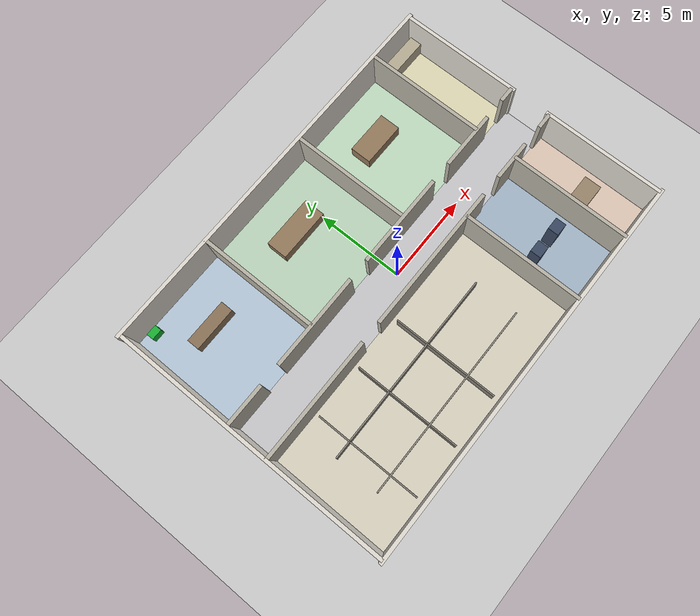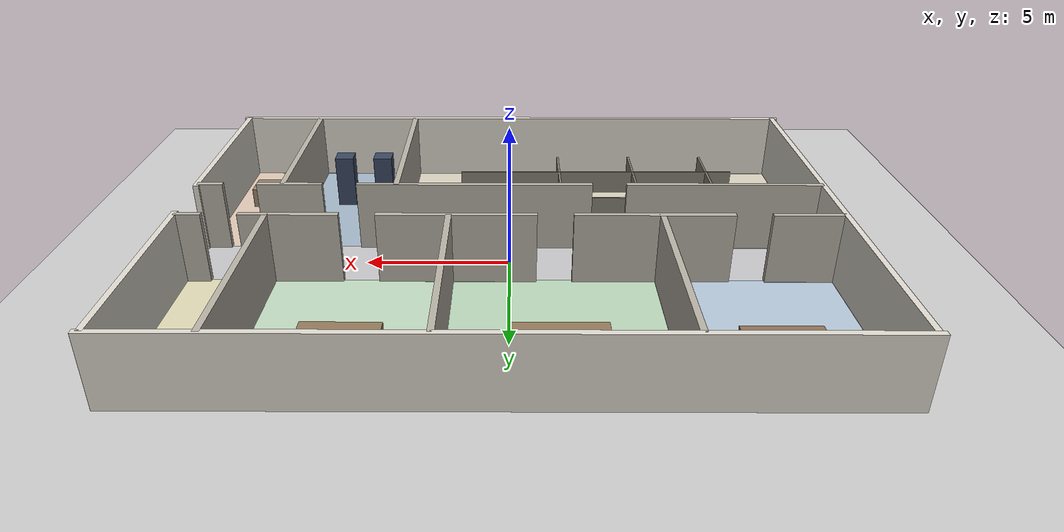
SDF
<?xml version="1.0" ?>
<sdf version='1.8'>
  <world name='office'>

    <physics name='1ms' type='ignored'>
      <max_step_size>0.001</max_step_size>
      <real_time_factor>1</real_time_factor>
    </physics>

    <plugin filename="ignition-gazebo-physics-system"
            name="ignition::gazebo::systems::Physics"/>
    <plugin filename="ignition-gazebo-user-commands-system"
            name="ignition::gazebo::systems::UserCommands"/>
    <plugin filename="ignition-gazebo-scene-broadcaster-system"
            name="ignition::gazebo::systems::SceneBroadcaster"/>
    <plugin filename="ignition-gazebo-sensors-system"
            name="ignition::gazebo::systems::Sensors">
      <render_engine>ogre2</render_engine>
    </plugin>
    <plugin filename="ignition-gazebo-contact-system"
            name="ignition::gazebo::systems::Contact"/>

    <light name='sun' type='directional'>
      <pose>0 0 20 0 0 0</pose>
      <cast_shadows>true</cast_shadows>
      <intensity>1</intensity>
      <direction>-0.1 0.1 -0.95</direction>
      <diffuse>1.0 0.98 0.96 1</diffuse>
      <specular>0.3 0.3 0.3 1</specular>
    </light>
    <light name='light_w' type='point'>
      <pose>-6 0 3 0 0 0</pose>
      <diffuse>0.9 0.9 1.0 1</diffuse>
      <specular>0.1 0.1 0.1 1</specular>
      <attenuation><range>20</range><linear>0.04</linear></attenuation>
    </light>
    <light name='light_e' type='point'>
      <pose>6 0 3 0 0 0</pose>
      <diffuse>0.9 0.9 1.0 1</diffuse>
      <specular>0.1 0.1 0.1 1</specular>
      <attenuation><range>20</range><linear>0.04</linear></attenuation>
    </light>

    <!-- Ground plane -->
    <model name='ground_plane'>
      <static>true</static>
      <link name='link'>
        <collision name='c'>
          <geometry><plane><normal>0 0 1</normal><size>100 100</size></plane></geometry>
        </collision>
        <visual name='v'>
          <geometry><plane><normal>0 0 1</normal><size>100 100</size></plane></geometry>
          <material><ambient>0.80 0.80 0.80 1</ambient><diffuse>0.80 0.80 0.80 1</diffuse></material>
        </visual>
      </link>
    </model>

    <!-- ── Floor zone pads (h=0.005 m) ───────────────────────────────────── -->
    <model name='zone_corridor'><static>true</static><pose>0 0 0.003 0 0 0</pose><link name='link'><collision name='c'><geometry><box><size>22 2.4 0.005</size></box></geometry></collision><visual name='v'><geometry><box><size>22 2.4 0.005</size></box></geometry><material><ambient>0.82 0.82 0.84 0.8</ambient><diffuse>0.82 0.82 0.84 0.8</diffuse></material></visual></link></model>
    <model name='zone_lobby'><static>true</static><pose>-8 4.6 0.003 0 0 0</pose><link name='link'><collision name='c'><geometry><box><size>6 6.8 0.005</size></box></geometry></collision><visual name='v'><geometry><box><size>6 6.8 0.005</size></box></geometry><material><ambient>0.72 0.82 0.92 0.7</ambient><diffuse>0.72 0.82 0.92 0.7</diffuse></material></visual></link></model>
    <model name='zone_mtg_a'><static>true</static><pose>-1.5 4.6 0.003 0 0 0</pose><link name='link'><collision name='c'><geometry><box><size>7 6.8 0.005</size></box></geometry></collision><visual name='v'><geometry><box><size>7 6.8 0.005</size></box></geometry><material><ambient>0.75 0.90 0.75 0.7</ambient><diffuse>0.75 0.90 0.75 0.7</diffuse></material></visual></link></model>
    <model name='zone_mtg_b'><static>true</static><pose>5 4.6 0.003 0 0 0</pose><link name='link'><collision name='c'><geometry><box><size>6 6.8 0.005</size></box></geometry></collision><visual name='v'><geometry><box><size>6 6.8 0.005</size></box></geometry><material><ambient>0.78 0.93 0.78 0.7</ambient><diffuse>0.78 0.93 0.78 0.7</diffuse></material></visual></link></model>
    <model name='zone_kitchen'><static>true</static><pose>9.5 4.6 0.003 0 0 0</pose><link name='link'><collision name='c'><geometry><box><size>3 6.8 0.005</size></box></geometry></collision><visual name='v'><geometry><box><size>3 6.8 0.005</size></box></geometry><material><ambient>0.96 0.92 0.72 0.7</ambient><diffuse>0.96 0.92 0.72 0.7</diffuse></material></visual></link></model>
    <model name='zone_workspace'><static>true</static><pose>-3.5 -4.6 0.003 0 0 0</pose><link name='link'><collision name='c'><geometry><box><size>15 6.8 0.005</size></box></geometry></collision><visual name='v'><geometry><box><size>15 6.8 0.005</size></box></geometry><material><ambient>0.92 0.88 0.78 0.7</ambient><diffuse>0.92 0.88 0.78 0.7</diffuse></material></visual></link></model>
    <model name='zone_server'><static>true</static><pose>6 -4.6 0.003 0 0 0</pose><link name='link'><collision name='c'><geometry><box><size>4 6.8 0.005</size></box></geometry></collision><visual name='v'><geometry><box><size>4 6.8 0.005</size></box></geometry><material><ambient>0.62 0.72 0.82 0.7</ambient><diffuse>0.62 0.72 0.82 0.7</diffuse></material></visual></link></model>
    <model name='zone_break'><static>true</static><pose>9.5 -4.6 0.003 0 0 0</pose><link name='link'><collision name='c'><geometry><box><size>3 6.8 0.005</size></box></geometry></collision><visual name='v'><geometry><box><size>3 6.8 0.005</size></box></geometry><material><ambient>0.95 0.82 0.72 0.7</ambient><diffuse>0.95 0.82 0.72 0.7</diffuse></material></visual></link></model>

    <!-- ── Outer walls (22 m × 16 m, 2.5 m tall) ────────────────────────── -->
    <model name='wall_north'><static>true</static><pose>0 8 1.25 0 0 0</pose><link name='link'><collision name='c'><geometry><box><size>22.4 0.2 2.5</size></box></geometry></collision><visual name='v'><geometry><box><size>22.4 0.2 2.5</size></box></geometry><material><ambient>0.88 0.86 0.82 1</ambient><diffuse>0.88 0.86 0.82 1</diffuse></material></visual></link></model>
    <model name='wall_south'><static>true</static><pose>0 -8 1.25 0 0 0</pose><link name='link'><collision name='c'><geometry><box><size>22.4 0.2 2.5</size></box></geometry></collision><visual name='v'><geometry><box><size>22.4 0.2 2.5</size></box></geometry><material><ambient>0.88 0.86 0.82 1</ambient><diffuse>0.88 0.86 0.82 1</diffuse></material></visual></link></model>
    <model name='wall_west'><static>true</static><pose>-11 0 1.25 0 0 0</pose><link name='link'><collision name='c'><geometry><box><size>0.2 16 2.5</size></box></geometry></collision><visual name='v'><geometry><box><size>0.2 16 2.5</size></box></geometry><material><ambient>0.88 0.86 0.82 1</ambient><diffuse>0.88 0.86 0.82 1</diffuse></material></visual></link></model>
    <!-- East wall: 2 m entry gap at y = -1 to +1 -->
    <model name='wall_east_n'><static>true</static><pose>11 4.5 1.25 0 0 0</pose><link name='link'><collision name='c'><geometry><box><size>0.2 7 2.5</size></box></geometry></collision><visual name='v'><geometry><box><size>0.2 7 2.5</size></box></geometry><material><ambient>0.88 0.86 0.82 1</ambient><diffuse>0.88 0.86 0.82 1</diffuse></material></visual></link></model>
    <model name='wall_east_s'><static>true</static><pose>11 -4.5 1.25 0 0 0</pose><link name='link'><collision name='c'><geometry><box><size>0.2 7 2.5</size></box></geometry></collision><visual name='v'><geometry><box><size>0.2 7 2.5</size></box></geometry><material><ambient>0.88 0.86 0.82 1</ambient><diffuse>0.88 0.86 0.82 1</diffuse></material></visual></link></model>

    <!-- ── North corridor wall (y=1.2) — 4 door openings 1.2 m wide ──────── -->
    <!-- Lobby door at x=-8, MtgA at x=-1.5, MtgB at x=+5, Kitchen at x=+9.5 -->
    <model name='ncw_1'><static>true</static><pose>-9.8 1.2 1.25 0 0 0</pose><link name='link'><collision name='c'><geometry><box><size>2.4 0.2 2.5</size></box></geometry></collision><visual name='v'><geometry><box><size>2.4 0.2 2.5</size></box></geometry><material><ambient>0.72 0.70 0.65 1</ambient><diffuse>0.72 0.70 0.65 1</diffuse></material></visual></link></model>
    <model name='ncw_2'><static>true</static><pose>-4.75 1.2 1.25 0 0 0</pose><link name='link'><collision name='c'><geometry><box><size>5.3 0.2 2.5</size></box></geometry></collision><visual name='v'><geometry><box><size>5.3 0.2 2.5</size></box></geometry><material><ambient>0.72 0.70 0.65 1</ambient><diffuse>0.72 0.70 0.65 1</diffuse></material></visual></link></model>
    <model name='ncw_3'><static>true</static><pose>1.75 1.2 1.25 0 0 0</pose><link name='link'><collision name='c'><geometry><box><size>5.3 0.2 2.5</size></box></geometry></collision><visual name='v'><geometry><box><size>5.3 0.2 2.5</size></box></geometry><material><ambient>0.72 0.70 0.65 1</ambient><diffuse>0.72 0.70 0.65 1</diffuse></material></visual></link></model>
    <model name='ncw_4'><static>true</static><pose>7.25 1.2 1.25 0 0 0</pose><link name='link'><collision name='c'><geometry><box><size>3.3 0.2 2.5</size></box></geometry></collision><visual name='v'><geometry><box><size>3.3 0.2 2.5</size></box></geometry><material><ambient>0.72 0.70 0.65 1</ambient><diffuse>0.72 0.70 0.65 1</diffuse></material></visual></link></model>
    <model name='ncw_5'><static>true</static><pose>10.55 1.2 1.25 0 0 0</pose><link name='link'><collision name='c'><geometry><box><size>0.9 0.2 2.5</size></box></geometry></collision><visual name='v'><geometry><box><size>0.9 0.2 2.5</size></box></geometry><material><ambient>0.72 0.70 0.65 1</ambient><diffuse>0.72 0.70 0.65 1</diffuse></material></visual></link></model>

    <!-- ── South corridor wall (y=-1.2) — 3 door openings 1.2 m wide ─────── -->
    <!-- OpenWS door at x=-3.5, Server at x=+6, Break at x=+9.5 -->
    <model name='scw_1'><static>true</static><pose>-7.55 -1.2 1.25 0 0 0</pose><link name='link'><collision name='c'><geometry><box><size>6.9 0.2 2.5</size></box></geometry></collision><visual name='v'><geometry><box><size>6.9 0.2 2.5</size></box></geometry><material><ambient>0.72 0.70 0.65 1</ambient><diffuse>0.72 0.70 0.65 1</diffuse></material></visual></link></model>
    <model name='scw_2'><static>true</static><pose>1.25 -1.2 1.25 0 0 0</pose><link name='link'><collision name='c'><geometry><box><size>8.3 0.2 2.5</size></box></geometry></collision><visual name='v'><geometry><box><size>8.3 0.2 2.5</size></box></geometry><material><ambient>0.72 0.70 0.65 1</ambient><diffuse>0.72 0.70 0.65 1</diffuse></material></visual></link></model>
    <model name='scw_3'><static>true</static><pose>7.75 -1.2 1.25 0 0 0</pose><link name='link'><collision name='c'><geometry><box><size>2.3 0.2 2.5</size></box></geometry></collision><visual name='v'><geometry><box><size>2.3 0.2 2.5</size></box></geometry><material><ambient>0.72 0.70 0.65 1</ambient><diffuse>0.72 0.70 0.65 1</diffuse></material></visual></link></model>
    <model name='scw_4'><static>true</static><pose>10.55 -1.2 1.25 0 0 0</pose><link name='link'><collision name='c'><geometry><box><size>0.9 0.2 2.5</size></box></geometry></collision><visual name='v'><geometry><box><size>0.9 0.2 2.5</size></box></geometry><material><ambient>0.72 0.70 0.65 1</ambient><diffuse>0.72 0.70 0.65 1</diffuse></material></visual></link></model>

    <!-- ── North wing room dividers (y = 1.2 to 8) ───────────────────────── -->
    <model name='ndiv_lobby_mtga'><static>true</static><pose>-5 4.6 1.25 0 0 0</pose><link name='link'><collision name='c'><geometry><box><size>0.2 6.8 2.5</size></box></geometry></collision><visual name='v'><geometry><box><size>0.2 6.8 2.5</size></box></geometry><material><ambient>0.72 0.70 0.65 1</ambient><diffuse>0.72 0.70 0.65 1</diffuse></material></visual></link></model>
    <model name='ndiv_mtga_mtgb'><static>true</static><pose>2 4.6 1.25 0 0 0</pose><link name='link'><collision name='c'><geometry><box><size>0.2 6.8 2.5</size></box></geometry></collision><visual name='v'><geometry><box><size>0.2 6.8 2.5</size></box></geometry><material><ambient>0.72 0.70 0.65 1</ambient><diffuse>0.72 0.70 0.65 1</diffuse></material></visual></link></model>
    <model name='ndiv_mtgb_kit'><static>true</static><pose>8 4.6 1.25 0 0 0</pose><link name='link'><collision name='c'><geometry><box><size>0.2 6.8 2.5</size></box></geometry></collision><visual name='v'><geometry><box><size>0.2 6.8 2.5</size></box></geometry><material><ambient>0.72 0.70 0.65 1</ambient><diffuse>0.72 0.70 0.65 1</diffuse></material></visual></link></model>

    <!-- ── South wing room dividers (y = -8 to -1.2) ────────────────────── -->
    <model name='sdiv_ws_srv'><static>true</static><pose>4 -4.6 1.25 0 0 0</pose><link name='link'><collision name='c'><geometry><box><size>0.2 6.8 2.5</size></box></geometry></collision><visual name='v'><geometry><box><size>0.2 6.8 2.5</size></box></geometry><material><ambient>0.72 0.70 0.65 1</ambient><diffuse>0.72 0.70 0.65 1</diffuse></material></visual></link></model>
    <model name='sdiv_srv_brk'><static>true</static><pose>8 -4.6 1.25 0 0 0</pose><link name='link'><collision name='c'><geometry><box><size>0.2 6.8 2.5</size></box></geometry></collision><visual name='v'><geometry><box><size>0.2 6.8 2.5</size></box></geometry><material><ambient>0.72 0.70 0.65 1</ambient><diffuse>0.72 0.70 0.65 1</diffuse></material></visual></link></model>

    <!-- ── Cubicle dividers in open workspace (0.9 m tall) ───────────────── -->
    <!-- Horizontal rows (E-W): x = -9 to +2, centered at x = -3.5 -->
    <model name='cub_row1'><static>true</static><pose>-3.5 -6.0 0.45 0 0 0</pose><link name='link'><collision name='c'><geometry><box><size>11 0.08 0.9</size></box></geometry></collision><visual name='v'><geometry><box><size>11 0.08 0.9</size></box></geometry><material><ambient>0.52 0.50 0.46 1</ambient><diffuse>0.52 0.50 0.46 1</diffuse></material></visual></link></model>
    <model name='cub_row2'><static>true</static><pose>-3.5 -3.5 0.45 0 0 0</pose><link name='link'><collision name='c'><geometry><box><size>11 0.08 0.9</size></box></geometry></collision><visual name='v'><geometry><box><size>11 0.08 0.9</size></box></geometry><material><ambient>0.52 0.50 0.46 1</ambient><diffuse>0.52 0.50 0.46 1</diffuse></material></visual></link></model>
    <!-- Vertical columns (N-S): y = -7.6 to -1.6, centered at y = -4.6 -->
    <model name='cub_col1'><static>true</static><pose>-8 -4.6 0.45 0 0 0</pose><link name='link'><collision name='c'><geometry><box><size>0.08 6.0 0.9</size></box></geometry></collision><visual name='v'><geometry><box><size>0.08 6.0 0.9</size></box></geometry><material><ambient>0.52 0.50 0.46 1</ambient><diffuse>0.52 0.50 0.46 1</diffuse></material></visual></link></model>
    <model name='cub_col2'><static>true</static><pose>-5 -4.6 0.45 0 0 0</pose><link name='link'><collision name='c'><geometry><box><size>0.08 6.0 0.9</size></box></geometry></collision><visual name='v'><geometry><box><size>0.08 6.0 0.9</size></box></geometry><material><ambient>0.52 0.50 0.46 1</ambient><diffuse>0.52 0.50 0.46 1</diffuse></material></visual></link></model>
    <model name='cub_col3'><static>true</static><pose>-2 -4.6 0.45 0 0 0</pose><link name='link'><collision name='c'><geometry><box><size>0.08 6.0 0.9</size></box></geometry></collision><visual name='v'><geometry><box><size>0.08 6.0 0.9</size></box></geometry><material><ambient>0.52 0.50 0.46 1</ambient><diffuse>0.52 0.50 0.46 1</diffuse></material></visual></link></model>

    <!-- ── Furniture ─────────────────────────────────────────────────────── -->
    <!-- Reception desk -->
    <model name='reception_desk'><static>true</static><pose>-8 5.5 0.4 0 0 0</pose><link name='link'><collision name='c'><geometry><box><size>2.5 0.7 0.8</size></box></geometry></collision><visual name='v'><geometry><box><size>2.5 0.7 0.8</size></box></geometry><material><ambient>0.55 0.45 0.35 1</ambient><diffuse>0.55 0.45 0.35 1</diffuse></material></visual></link></model>
    <!-- Meeting table A -->
    <model name='table_mtg_a'><static>true</static><pose>-1.5 5.5 0.375 0 0 0</pose><link name='link'><collision name='c'><geometry><box><size>3.0 1.2 0.75</size></box></geometry></collision><visual name='v'><geometry><box><size>3.0 1.2 0.75</size></box></geometry><material><ambient>0.58 0.48 0.36 1</ambient><diffuse>0.58 0.48 0.36 1</diffuse></material></visual></link></model>
    <!-- Meeting table B -->
    <model name='table_mtg_b'><static>true</static><pose>5 5.5 0.375 0 0 0</pose><link name='link'><collision name='c'><geometry><box><size>2.5 1.2 0.75</size></box></geometry></collision><visual name='v'><geometry><box><size>2.5 1.2 0.75</size></box></geometry><material><ambient>0.58 0.48 0.36 1</ambient><diffuse>0.58 0.48 0.36 1</diffuse></material></visual></link></model>
    <!-- Kitchen counter along north wall -->
    <model name='kitchen_counter'><static>true</static><pose>9.5 7.4 0.45 0 0 0</pose><link name='link'><collision name='c'><geometry><box><size>2.8 0.7 0.9</size></box></geometry></collision><visual name='v'><geometry><box><size>2.8 0.7 0.9</size></box></geometry><material><ambient>0.72 0.68 0.58 1</ambient><diffuse>0.72 0.68 0.58 1</diffuse></material></visual></link></model>
    <!-- Server racks (2 units) -->
    <model name='server_rack_a'><static>true</static><pose>5.0 -5 1.0 0 0 0</pose><link name='link'><collision name='c'><geometry><box><size>0.7 0.6 2.0</size></box></geometry></collision><visual name='v'><geometry><box><size>0.7 0.6 2.0</size></box></geometry><material><ambient>0.22 0.28 0.38 1</ambient><diffuse>0.22 0.28 0.38 1</diffuse></material></visual></link></model>
    <model name='server_rack_b'><static>true</static><pose>6.5 -5 1.0 0 0 0</pose><link name='link'><collision name='c'><geometry><box><size>0.7 0.6 2.0</size></box></geometry></collision><visual name='v'><geometry><box><size>0.7 0.6 2.0</size></box></geometry><material><ambient>0.22 0.28 0.38 1</ambient><diffuse>0.22 0.28 0.38 1</diffuse></material></visual></link></model>
    <!-- Break room table -->
    <model name='break_table'><static>true</static><pose>9.5 -5 0.375 0 0 0</pose><link name='link'><collision name='c'><geometry><box><size>1.4 1.0 0.75</size></box></geometry></collision><visual name='v'><geometry><box><size>1.4 1.0 0.75</size></box></geometry><material><ambient>0.60 0.52 0.42 1</ambient><diffuse>0.60 0.52 0.42 1</diffuse></material></visual></link></model>
    <!-- Charging dock (against lobby north wall) -->
    <model name='charger'><static>true</static><pose>-10 7.5 0.3 0 0 0</pose><link name='link'><collision name='c'><geometry><box><size>0.6 0.4 0.6</size></box></geometry></collision><visual name='v'><geometry><box><size>0.6 0.4 0.6</size></box></geometry><material><ambient>0.1 0.7 0.2 1</ambient><diffuse>0.1 0.7 0.2 1</diffuse></material></visual></link></model>

  </world>
</sdf>
